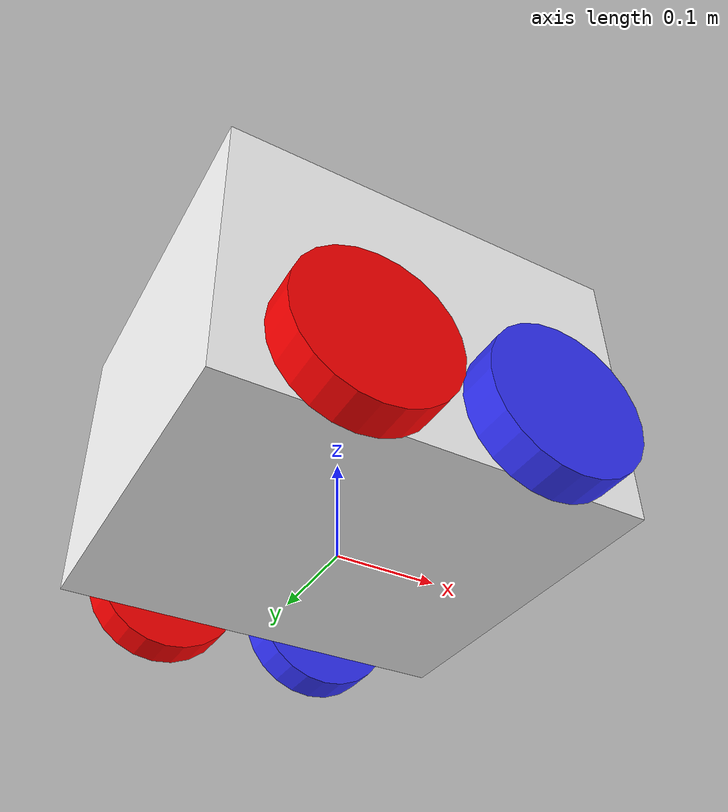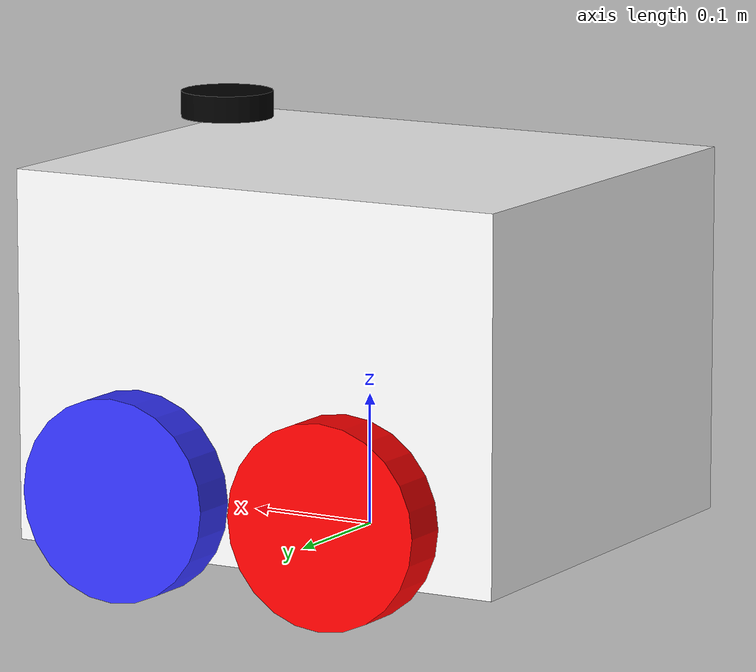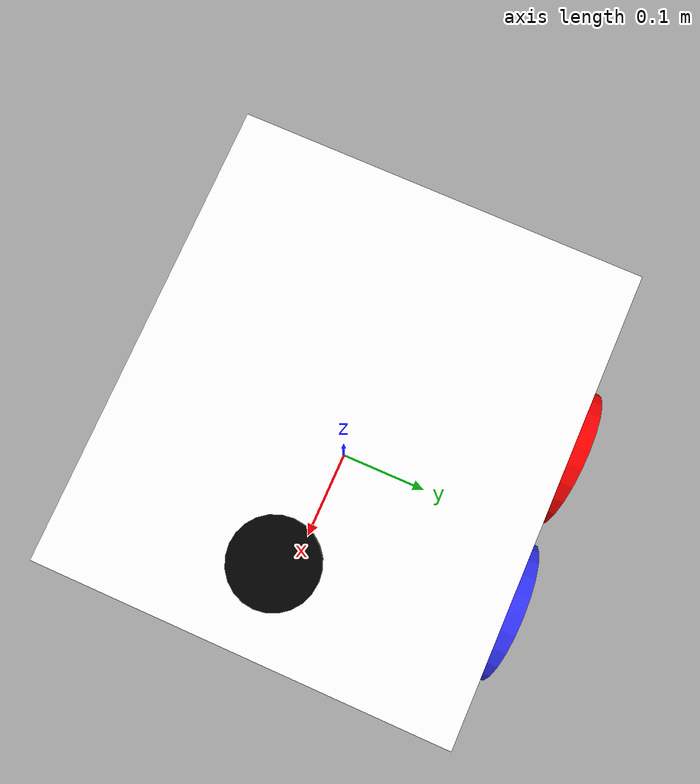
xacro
<?xml version="1.0"?>
<robot xmlns:xacro="http://www.ros.org/wiki/xacro"  name="robot">

    <xacro:arg name="use_ros2_control" default="true"/>
    <xacro:arg name="sim_mode" default="false"/>

    <xacro:include filename="mrp_core.xacro"/>

    <xacro:if value="$(arg use_ros2_control)">
        <xacro:include filename="ros2_control.xacro" />
    </xacro:if>
    <xacro:unless value="$(arg use_ros2_control)">
        <xacro:include filename="gazebo_control.xacro" />
    </xacro:unless>

    <xacro:include filename="lidar.xacro"/>

</robot>

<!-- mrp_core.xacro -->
<robot xmlns:xacro="http://www.ros.org/wiki/xacro">

    <xacro:include filename="inertial_macros.xacro"/>

    <!-- These are in meters and kilograms -->
    <xacro:property name="chassis_length" value="0.4"/>
    <xacro:property name="chassis_width" value="0.35"/>
    <xacro:property name="chassis_height" value="0.28"/>
    <xacro:property name="chassis_mass" value="30"/> <!-- TODO -->
    <xacro:property name="wheel_radius" value="0.0762"/>
    <xacro:property name="wheel_thickness" value="0.0381"/>
    <xacro:property name="wheel_mass" value="1.5"/> <!-- TODO -->
    <!-- From bottom center -->
    <xacro:property name="wheel_offset_x" value="0.0875"/>
    <xacro:property name="wheel_offset_y" value="${0.1877 + wheel_thickness/2}"/>
    <xacro:property name="wheel_offset_z" value="0.0508"/>

    <!-- Material setup for simulation -->
    <material name="white">
        <color rgba="1 1 1 1"/>
    </material>

    <material name="blue">
        <color rgba="0.2 0.2 1 1"/>
    </material>

    <material name="black">
        <color rgba="0 0 0 1"/>
    </material>

    <material name="red">
        <color rgba="1 0 0 1"/>
    </material>

    <!-- Base link -->
    <link name="base_link">

    </link>

    <!-- Chassis -->
    <joint name="chassis_joint" type="fixed">
        <parent link="base_link"/>
        <child link="chassis"/>
        <origin xyz="-${chassis_length/2} 0 0"/>
    </joint>

    <link name="chassis">
        <visual>
            <origin xyz="${chassis_length/2} 0 ${chassis_height/2}"/> <!-- move forward and up half of dimensions, placing origin at rear bottom -->
            <geometry>
                <box size="${chassis_length} ${chassis_width} ${chassis_height}"/>
            </geometry>
            <material name="white"/>
        </visual>

        <collision>
            <origin xyz="${chassis_length/2} 0 ${chassis_height/2}"/>
            <geometry>
                <box size="${chassis_length} ${chassis_width} ${chassis_height}"/>
            </geometry>
        </collision>

        <xacro:inertial_box mass="${chassis_mass}" x="${chassis_length}" y="${chassis_width}" z="${chassis_height}">
            <origin xyz="${chassis_length/2} 0 ${chassis_height/2}"/>
        </xacro:inertial_box>
    </link>

    <gazebo reference="chassis">
        <material>Gazebo/White</material>
    </gazebo>

    <!-- Rear left wheel -->
    <joint name="rear_left_wheel_joint" type="continuous">
        <parent link="base_link"/>
        <child link="rear_left_wheel"/>
        <origin xyz="${-wheel_offset_x} ${-wheel_offset_y} ${wheel_offset_z}" rpy="-${pi/2} 0 0"/> <!-- Rotate to be upright -->
        <axis xyz="0 0 1"/> <!-- Direction of rotation -->
    </joint>

    <link name="rear_left_wheel">
        <visual>
            <geometry>
                <cylinder radius="${wheel_radius}" length="${wheel_thickness}"/>
            </geometry>
            <material name="red"/>
        </visual>

        <collision>
            <geometry>
                <cylinder radius="${wheel_radius}" length="${wheel_thickness}"/>
            </geometry>
        </collision>

        <xacro:inertial_cylinder mass="${wheel_mass}" radius="${wheel_radius}" length="${wheel_thickness}">
            <origin xyz="0 0 0"/> <!-- No origin given, so set to 0s -->
        </xacro:inertial_cylinder>
    </link>

    <gazebo reference="rear_left_wheel">
        <material>Gazebo/Red</material>
    </gazebo>

    <!-- Rear right wheel -->
    <joint name="rear_right_wheel_joint" type="continuous">
        <parent link="base_link"/>
        <child link="rear_right_wheel"/>
        <origin xyz="${-wheel_offset_x} ${wheel_offset_y} ${wheel_offset_z}" rpy="${pi/2} 0 0"/>
        <axis xyz="0 0 -1"/>
    </joint>

    <link name="rear_right_wheel">
        <visual>
            <geometry>
                <cylinder radius="${wheel_radius}" length="${wheel_thickness}"/>
            </geometry>
            <material name="red"/>
        </visual>

        <collision>
            <geometry>
                <cylinder radius="${wheel_radius}" length="${wheel_thickness}"/>
            </geometry>
        </collision>

        <xacro:inertial_cylinder mass="${wheel_mass}" radius="${wheel_radius}" length="${wheel_thickness}">
            <origin xyz="0 0 0"/>
        </xacro:inertial_cylinder>
    </link>

    <gazebo reference="rear_right_wheel">
        <material>Gazebo/Red</material>
    </gazebo>

    <!-- Front left wheel -->
    <joint name="front_left_wheel_joint" type="continuous">
        <parent link="base_link"/>
        <child link="front_left_wheel"/>
        <origin xyz="${wheel_offset_x} ${-wheel_offset_y} ${wheel_offset_z}" rpy="-${pi/2} 0 0"/>
        <axis xyz="0 0 1"/>
    </joint>

    <link name="front_left_wheel">
        <visual>
            <geometry>
                <cylinder radius="${wheel_radius}" length="${wheel_thickness}"/>
            </geometry>
            <material name="blue"/>
        </visual>

        <collision>
            <geometry>
                <cylinder radius="${wheel_radius}" length="${wheel_thickness}"/>
            </geometry>
        </collision>

        <xacro:inertial_cylinder mass="${wheel_mass}" radius="${wheel_radius}" length="${wheel_thickness}">
            <origin xyz="0 0 0"/>
        </xacro:inertial_cylinder>
    </link>

    <gazebo reference="front_left_wheel">
        <material>Gazebo/Blue</material>
    </gazebo>

    <!-- Front right wheel -->
    <joint name="front_right_wheel_joint" type="continuous">
        <parent link="base_link"/>
        <child link="front_right_wheel"/>
        <origin xyz="${wheel_offset_x} ${wheel_offset_y} ${wheel_offset_z}" rpy="${pi/2} 0 0"/>
        <axis xyz="0 0 -1"/>
    </joint>

    <link name="front_right_wheel">
        <visual>
            <geometry>
                <cylinder radius="${wheel_radius}" length="${wheel_thickness}"/>
            </geometry>
            <material name="blue"/>
        </visual>

        <collision>
            <geometry>
                <cylinder radius="${wheel_radius}" length="${wheel_thickness}"/>
            </geometry>
        </collision>

        <xacro:inertial_cylinder mass="${wheel_mass}" radius="${wheel_radius}" length="${wheel_thickness}">
            <origin xyz="0 0 0"/>
        </xacro:inertial_cylinder>
    </link>

    <gazebo reference="front_right_wheel">
        <material>Gazebo/Blue</material>
    </gazebo>

</robot>

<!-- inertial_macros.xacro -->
<!-- From https://github.com/joshnewans/articubot_one, modified -->

<robot xmlns:xacro="http://www.ros.org/wiki/xacro" >

    <!-- Specify some standard inertial calculations https://en.wikipedia.org/wiki/List_of_moments_of_inertia -->
    <!-- These make use of xacro's mathematical functionality -->

    <xacro:macro name="inertial_box" params="mass x y z *origin">
        <inertial>
            <xacro:insert_block name="origin"/>
            <mass value="${mass}" />
            <inertia ixx="${(1/12) * mass * (y*y+z*z)}" ixy="0.0" ixz="0.0"
                    iyy="${(1/12) * mass * (x*x+z*z)}" iyz="0.0"
                    izz="${(1/12) * mass * (x*x+y*y)}" />
        </inertial>
    </xacro:macro>

    <xacro:macro name="inertial_cylinder" params="mass length radius *origin">
        <inertial>
            <xacro:insert_block name="origin"/>
            <mass value="${mass}" />
            <inertia ixx="${(1/12) * mass * (3*radius*radius + length*length)}" ixy="0.0" ixz="0.0"
                    iyy="${(1/12) * mass * (3*radius*radius + length*length)}" iyz="0.0"
                    izz="${(1/2) * mass * (radius*radius)}" />
        </inertial>
    </xacro:macro>

</robot>

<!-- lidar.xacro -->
<robot xmlns:xacro="http://www.ros.org/wiki/xacro">

    <!-- These are in meters and kilograms -->
    <xacro:property name="lidar_radius" value="0.035"/>
    <xacro:property name="lidar_thickness" value="0.02"/>
    <xacro:property name="lidar_mass" value="0.5"/>
    <!-- From bottom rear --> <!-- TODO -->
    <xacro:property name="lidar_offset_x" value="0.3246"/>
    <xacro:property name="lidar_offset_y" value="0"/>
    <xacro:property name="lidar_offset_z" value="0.31175"/>

    <joint name="laser_joint" type="fixed">
        <parent link="chassis"/>
        <child link="laser_frame"/>
        <origin xyz="${lidar_offset_x} ${lidar_offset_y} ${lidar_offset_z}"/>
    </joint>

    <link name="laser_frame">
        <visual>
            <geometry>
                <cylinder radius="${lidar_radius}" length="${lidar_thickness}"/>
            </geometry>
            <material name="black"/>
        </visual>

        <collision>
            <geometry>
                <cylinder radius="${lidar_radius}" length="${lidar_thickness}"/>
            </geometry>
        </collision>

        <xacro:inertial_cylinder mass="1" radius="${lidar_radius}" length="${lidar_thickness}">
            <origin xyz="${lidar_offset_x} ${lidar_offset_y} ${lidar_offset_z}"/>
        </xacro:inertial_cylinder>
    </link>

    <gazebo reference="laser_frame">
        <sensor name="laser" type="ray">
            <pose> 0 0 0 0 0 0 </pose>
            <visualize>true</visualize>
            <update_rate>10</update_rate>
            <ray>
                <scan>
                    <horizontal>
                        <samples>360</samples>
                        <min_angle>-3.14</min_angle>
                        <max_angle>3.14</max_angle>
                    </horizontal>
                </scan>
                <range>
                    <min>0.3</min>
                    <max>12</max>
                </range>
            </ray>
            <plugin name="laser_controller" filename="libgazebo_ros_ray_sensor.so">
                <ros>
                    <argument>~/out:=scan</argument>
                </ros>
                <output_type>sensor_msgs/LaserScan</output_type>
                <frame_name>laser_frame</frame_name>
            </plugin>
        </sensor>

        <material>Gazebo/Black</material>
    </gazebo>

</robot>
